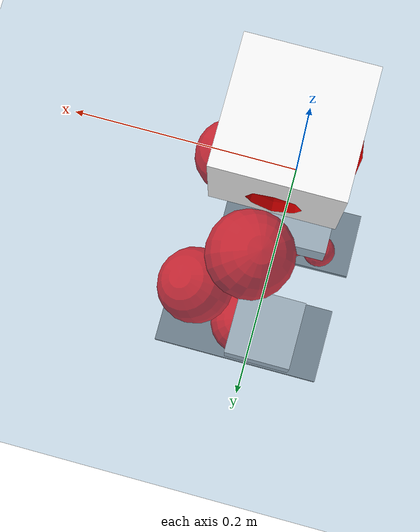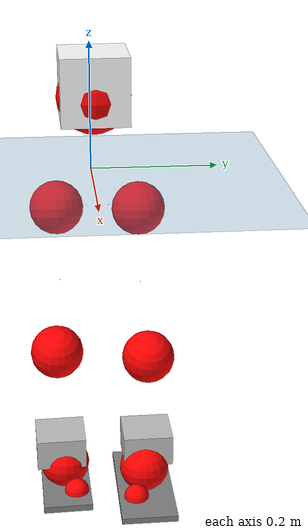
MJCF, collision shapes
<mujoco model="pi_12dof_release_v1">
  <compiler angle="radian" assetdir="assets" balanceinertia="true" inertiafromgeom="false"/>

  <option timestep="0.005" density="1.2" viscosity="2e-05"/>

  <size nkey="1"/>

  <visual>
    <quality shadowsize="8192"/>
    <map shadowclip="0.5"/>
  </visual>

  <default>
    <default class="/">
      <joint armature="0.01" damping="0.01" frictionloss="0.01"/>
      <geom contype="0" conaffinity="0" group="1" solref="-1000 -80"/>
      <site size="0.01 0.005 0.005" group="5"/>
      <general forcelimited="true" biastype="affine" gainprm="20" biasprm="0 -20 -0.5"/>
      <default class="foot">
        <geom size="0.0845 0.036 0.005" type="box" condim="6" group="4" priority="1" friction="0.9 0.2 0.2" solimp="0.015 1 0.005"/>
      </default>
      <default class="reward_collision_sphere">
        <geom group="5" rgba="1 0 0 1"/>
      </default>
    </default>
  </default>

  <asset>
    <texture type="skybox" colorspace="auto" name="//unnamed_texture_0" builtin="gradient" rgb1="0.95 0.95 0.95" rgb2="0.95 0.95 0.95" width="100" height="600"/>
    <texture type="2d" colorspace="auto" name="texplane" builtin="checker" rgb1="0.345 0.575 0.748" rgb2="0.345 0.575 0.748" markrgb="1 1 1" width="512" height="512"/>
    <material name="MatPlane" class="/" texture="texplane" texuniform="true" texrepeat="2 2" specular="0.9"/>
    <mesh name="baselink_1" class="/" file="baselink_1.STL"/>
    <mesh name="r_hip_pitch_link" class="/" file="r_hip_pitch_link.STL"/>
    <mesh name="r_hip_roll_link" class="/" file="r_hip_roll_link.STL"/>
    <mesh name="r_thigh_link" class="/" file="r_thigh_link.STL"/>
    <mesh name="r_calf_link" class="/" file="r_calf_link.STL"/>
    <mesh name="r_ankle_pitch_link" class="/" file="r_ankle_pitch_link.STL"/>
    <mesh name="r_ankle_roll_link" class="/" file="r_ankle_roll_link.STL"/>
    <mesh name="l_hip_pitch_link" class="/" file="l_hip_pitch_link.STL"/>
    <mesh name="l_hip_roll_link" class="/" file="l_hip_roll_link.STL"/>
    <mesh name="l_thigh_link" class="/" file="l_thigh_link.STL"/>
    <mesh name="l_calf_link" class="/" file="l_calf_link.STL"/>
    <mesh name="l_ankle_pitch_link" class="/" file="l_ankle_pitch_link.STL"/>
    <mesh name="l_ankle_roll_link" class="/" file="l_ankle_roll_link.STL"/>
  </asset>

  <worldbody>
    <geom name="floor" class="/" size="100 100 0.125" type="plane" group="0" material="MatPlane"/>
    <light name="toplight_shadow" class="/" pos="0 0 5" dir="0.0990148 0.0990148 -0.990148" type="directional" ambient="0.04 0.04 0.04" diffuse="0.55 0.55 0.55" specular="0.12 0.12 0.12"/>
    <light name="toplight_fill" class="/" pos="0 0 5" dir="0.0990148 0.0990148 -0.990148" type="directional" castshadow="false" ambient="0.04 0.04 0.04" diffuse="0.3 0.3 0.3" specular="0.08 0.08 0.08"/>
    <body name="trunk" pos="0.01003 0.00590004 0.0021389" quat="0.999993 0.00279562 -0.00180419 0.00165302">
      <inertial pos="0.0122965 -0.00228026 0.065196" quat="0.696374 0.00150828 0.0153096 0.717514" mass="2.43384" diaginertia="0.00109038 0.00423041 0.0447888"/>
      <joint name="//unnamed_joint_0" type="free"/>
      <geom name="//unnamed_geom_1" class="/" type="mesh" density="0" rgba="1 1 1 1" mesh="baselink_1"/>
      <geom name="//unnamed_geom_2" class="/" size="0.0526371 0.0526371 0.0526371" pos="0 0 0.13216" type="box" rgba="1 1 1 1"/>
      <geom name="//unnamed_geom_3" class="reward_collision_sphere" size="0.0579008" pos="0 0 0.11564"/>
      <site name="imu" class="/" pos="0.00873549 -0.00900069 0.00341938" size="0.0105274"/>
      <camera name="track" class="/" pos="0 -1.71991 0" quat="0.707107 0.707107 0 0" mode="trackcom"/>
      <camera name="ego_camera" class="/" pos="0.0484702 0 0.29736" quat="-0.5 -0.5 0.5 0.5"/>
      <body name="r_hip_pitch_link" pos="0.00462425 -0.014923 -0.0566848" quat="0.991967 0.0035691 -0.126406 0.00307997">
        <inertial pos="0.0115494 -0.0439087 0.00346394" quat="-0.027154 0.704371 -0.0305561 0.708654" mass="0.381226" diaginertia="1.08522e-05 4.61287e-05 0.000869127"/>
        <joint name="r_hip_pitch_joint" class="/" pos="0 0 0" axis="-0.0164997 -0.999566 0.0244197" stiffness="0.0494452" range="-1.75094 1.22517" armature="0.0103755" damping="0.0381707" frictionloss="0.00732923"/>
        <geom name="//unnamed_geom_4" class="/" type="mesh" density="0" rgba="0.75294 0.75294 0.75294 1" mesh="r_hip_pitch_link"/>
        <geom name="//unnamed_geom_5" class="/" size="0.000526371 0.000526371 0.000526371" type="box" rgba="0.75294 0.75294 0.75294 1"/>
        <body name="r_hip_roll_link" pos="0.00099501 -0.0474779 -0.00181817" quat="1 2.36225e-05 1.01389e-05 -1.49007e-05">
          <inertial pos="-0.0111263 0.00172129 -0.109298" quat="0.704147 -0.0761021 -0.0899132 0.700215" mass="0.462119" diaginertia="3.75058e-05 0.000131655 0.00164397"/>
          <joint name="r_hip_roll_joint" class="/" pos="0 0 0" axis="-0.999993 -0.00284252 -0.00241021" range="0.0329176 0.4232" armature="0.0156492" damping="0.0360347" frictionloss="0.0114571"/>
          <geom name="//unnamed_geom_6" class="/" type="mesh" density="0" rgba="0.75294 0.75294 0.75294 1" mesh="r_hip_roll_link"/>
          <geom name="//unnamed_geom_7" class="/" size="0.000526371 0.000526371 0.000526371" type="box" rgba="0.75294 0.75294 0.75294 1"/>
          <geom name="//unnamed_geom_8" class="reward_collision_sphere" size="0.0421097"/>
          <body name="r_thigh_link" pos="-0.00132868 0.000329073 -0.114926" quat="0.999996 0.00264986 4.69519e-05 -0.000307493">
            <inertial pos="-0.00450357 -0.00271229 -0.072014" quat="0.743708 0.667222 -0.00334731 -0.0412488" mass="0.129561" diaginertia="1.42546e-05 4.23426e-05 0.000757361"/>
            <joint name="r_thigh_joint" class="/" pos="0 0 0" axis="-0.0114526 0.0338005 -0.999363" stiffness="0.0496941" range="-0.296475 0.489128" armature="0.0151247" damping="0" frictionloss="0.00962302"/>
            <geom name="//unnamed_geom_9" class="/" type="mesh" density="0" rgba="0.75294 0.75294 0.75294 1" mesh="r_thigh_link"/>
            <geom name="//unnamed_geom_10" class="/" size="0.000526371 0.000526371 0.000526371" type="box" rgba="0.75294 0.75294 0.75294 1"/>
            <body name="r_calf_link" pos="-0.00108255 -0.0103555 -0.116799" quat="0.947727 -0.000761475 0.319077 0.00128653">
              <inertial pos="-0.00731896 -0.00153984 -0.114949" quat="0.999934 -0.000520154 -0.00708959 0.0090518" mass="0.747495" diaginertia="0.000364315 0.00152531 0.00211674"/>
              <joint name="r_calf_joint" class="/" pos="0 0 0" axis="0.00110626 -0.999999 -7.12737e-05" range="-1.67993 0.814759" armature="0.00411658" damping="0.0447888" frictionloss="0.00474946"/>
              <geom name="//unnamed_geom_11" class="/" type="mesh" density="0" rgba="0.75294 0.75294 0.75294 1" mesh="r_calf_link"/>
              <geom name="//unnamed_geom_12" class="/" size="0.000526371 0.000526371 0.000526371" type="box" rgba="0.75294 0.75294 0.75294 1"/>
              <geom name="//unnamed_geom_13" class="reward_collision_sphere" size="0.0421097"/>
              <body name="r_ankle_pitch_link" pos="0.00240422 0.00105452 -0.239894" quat="0.980909 -0.00213556 -0.194455 0.000419011">
                <inertial pos="0.00920341 0.0137332 0.000808645" quat="-0.000357014 0.704473 -0.000185591 0.709731" mass="0.238887" diaginertia="3.60354e-05 0.000110231 0.00164505"/>
                <joint name="r_ankle_pitch_joint" class="/" pos="0 0 0" axis="0.0418568 -0.998562 0.0335013" stiffness="0.0481389" range="-1.14984 0.363913" armature="0.00999706" damping="0.0110454" frictionloss="0.0135008"/>
                <geom name="//unnamed_geom_14" class="/" type="mesh" density="0" rgba="0.75294 0.75294 0.75294 1" mesh="r_ankle_pitch_link"/>
                <geom name="//unnamed_geom_15" class="/" size="0.0410569 0.0421097 0.0263186" type="box" rgba="0.75294 0.75294 0.75294 1"/>
                <body name="r_ankle_roll_link" pos="0.0431928 0.00606715 0.00138881" quat="1 8.66487e-05 1.26602e-05 0.000180366">
                  <inertial pos="-0.0191034 -0.000473918 -0.0231211" quat="0.562534 0.430846 0.435511 0.555209" mass="0.543302" diaginertia="0.000103757 0.00047277 0.00322247"/>
                  <joint name="r_ankle_roll_joint" class="/" pos="0 0 0" axis="-0.998182 -0.0178443 0.0575668" stiffness="0.00268358" range="-0.182713 0.307556" armature="0.0110503" damping="0.0271172" frictionloss="0.0113727"/>
                  <geom name="//unnamed_geom_16" class="/" type="mesh" density="0" rgba="0.75294 0.75294 0.75294 1" mesh="r_ankle_roll_link"/>
                  <geom name="//unnamed_geom_17" class="/" type="mesh" rgba="0.75294 0.75294 0.75294 1" mesh="r_ankle_roll_link"/>
                  <geom name="right_foot" class="foot" size="0.0879354 0.0413724 0.00582594" pos="-0.0329597 0 -0.072688"/>
                  <geom name="//unnamed_geom_19" class="reward_collision_sphere" size="0.0421097" pos="-0.0323134 0 -0.03304"/>
                  <geom name="//unnamed_geom_20" class="reward_collision_sphere" size="0.0210548" pos="0.00969403 0.0171991 -0.06608"/>
                  <geom name="//unnamed_geom_21" class="reward_collision_sphere" size="0.0210548" pos="-0.0775523 0.0171991 -0.06608"/>
                  <site name="right_foot" class="foot" pos="-0.0329597 0 -0.072688" size="0.0105274"/>
                </body>
              </body>
            </body>
          </body>
        </body>
      </body>
      <body name="l_hip_pitch_link" pos="-0.00014131 0.0205753 -0.059" quat="0.992431 -1.50289e-06 -0.12268 -0.00554002">
        <inertial pos="-0.00948559 0.0464303 0.000441083" quat="-0.0389464 0.704667 0.029854 0.707839" mass="0.464169" diaginertia="1.47215e-05 4.65027e-05 0.00127414"/>
        <joint name="l_hip_pitch_joint" class="/" pos="0 0 0" axis="-0.000898754 0.999993 -0.00368006" stiffness="0.00715117" range="-1.33438 1.7926" armature="0.00698806" damping="0.0358816" frictionloss="0.00920666"/>
        <geom name="//unnamed_geom_22" class="/" type="mesh" density="0" rgba="0.75294 0.75294 0.75294 1" mesh="l_hip_pitch_link"/>
        <geom name="//unnamed_geom_23" class="/" size="0.000526371 0.000526371 0.000526371" type="box" rgba="0.75294 0.75294 0.75294 1"/>
        <body name="l_hip_roll_link" pos="0.00944428 0.0460624 -0.0064787" quat="0.999988 -0.000598008 0.00194315 0.00434489">
          <inertial pos="0.000604321 0.000276504 -0.101092" quat="0.703322 -0.0729374 -0.118803 0.697068" mass="0.498347" diaginertia="3.7222e-05 0.000142211 0.00155493"/>
          <joint name="l_hip_roll_joint" class="/" pos="0 0 0" axis="-0.999876 -0.0013727 -0.015664" range="-0.480131 0.157087" armature="0.00699948" damping="0.0599956" frictionloss="0.00873185"/>
          <geom name="//unnamed_geom_24" class="/" type="mesh" density="0" rgba="0.75294 0.75294 0.75294 1" mesh="l_hip_roll_link"/>
          <geom name="//unnamed_geom_25" class="/" size="0.000526371 0.000526371 0.000526371" type="box" rgba="0.75294 0.75294 0.75294 1"/>
          <geom name="//unnamed_geom_26" class="reward_collision_sphere" size="0.0421097"/>
          <body name="l_thigh_link" pos="-0.00130458 0.000474211 -0.117985" quat="0.999999 0.00099527 0.000444171 0.000716139">
            <inertial pos="0.000652894 -0.000814074 -0.0828973" quat="0.67539 0.73746 -0.000192312 0.000901041" mass="0.130785" diaginertia="1.41379e-05 4.62032e-05 0.000707969"/>
            <joint name="l_thigh_joint" class="/" pos="0 0 0" axis="-0.000378003 -0.000175583 -1" range="-0.602613 0.26827" armature="0.0128389" damping="0.000718523" frictionloss="0.0100002"/>
            <geom name="//unnamed_geom_27" class="/" type="mesh" density="0" rgba="0.75294 0.75294 0.75294 1" mesh="l_thigh_link"/>
            <geom name="//unnamed_geom_28" class="/" size="0.000526371 0.000526371 0.000526371" type="box" rgba="0.75294 0.75294 0.75294 1"/>
            <body name="l_calf_link" pos="-0.00210981 0.00973306 -0.123409" quat="0.948552 -0.000800243 0.316618 0.000742475">
              <inertial pos="0.000135821 -0.00391318 -0.114979" quat="0.999221 -0.0166961 0.00211396 -0.0356877" mass="0.923166" diaginertia="0.000367341 0.00151029 0.00216195"/>
              <joint name="l_calf_joint" class="/" pos="0 0 0" axis="-0.0137805 0.999813 -0.0135335" range="-0.659531 1.67323" armature="0.0159905" damping="0" frictionloss="0.00514249"/>
              <geom name="//unnamed_geom_29" class="/" type="mesh" density="0" rgba="0.75294 0.75294 0.75294 1" mesh="l_calf_link"/>
              <geom name="//unnamed_geom_30" class="/" size="0.000526371 0.000526371 0.000526371" type="box" rgba="0.75294 0.75294 0.75294 1"/>
              <geom name="//unnamed_geom_31" class="reward_collision_sphere" size="0.0421097"/>
              <body name="l_ankle_pitch_link" pos="0.00148172 0.00582497 -0.223779" quat="0.980027 0.000536965 -0.198862 -0.00130972">
                <inertial pos="0.00406608 0.00267346 0.00155153" quat="-0.00357575 0.704257 0.00469281 0.709921" mass="0.218671" diaginertia="3.65986e-05 0.000105279 0.00167912"/>
                <joint name="l_ankle_pitch_joint" class="/" pos="0 0 0" axis="0.000473775 0.999994 0.00342674" range="-0.525976 1.29369" armature="0.0107659" damping="0" frictionloss="0.00917503"/>
                <geom name="//unnamed_geom_32" class="/" type="mesh" density="0" rgba="0.75294 0.75294 0.75294 1" mesh="l_ankle_pitch_link"/>
                <geom name="//unnamed_geom_33" class="/" size="0.0410569 0.0421097 0.0263186" type="box" rgba="0.75294 0.75294 0.75294 1"/>
                <body name="l_ankle_roll_link" pos="0.0607174 -0.00653106 -0.00205111" quat="1 0.000253703 0.000117486 4.21799e-05">
                  <inertial pos="-0.0267832 -0.00347481 -0.0279512" quat="0.558953 0.433468 0.441595 0.55197" mass="0.590422" diaginertia="0.000136869 0.000590815 0.003669"/>
                  <joint name="l_ankle_roll_joint" class="/" pos="0 0 0" axis="-0.999349 -0.00959929 0.0347771" stiffness="0.0221179" range="-0.143175 0.149389" armature="0.0114124" damping="0" frictionloss="0.01031"/>
                  <geom name="//unnamed_geom_34" class="/" type="mesh" density="0" rgba="0.75294 0.75294 0.75294 1" mesh="l_ankle_roll_link"/>
                  <geom name="//unnamed_geom_35" class="/" type="mesh" rgba="0.75294 0.75294 0.75294 1" mesh="l_ankle_roll_link"/>
                  <geom name="left_foot" class="foot" size="0.106832 0.0472882 0.00534939" pos="-0.0329597 0 -0.072688"/>
                  <geom name="//unnamed_geom_37" class="reward_collision_sphere" size="0.0421097" pos="-0.0323134 0 -0.03304"/>
                  <geom name="//unnamed_geom_38" class="reward_collision_sphere" size="0.0210548" pos="0.00969403 -0.0171991 -0.06608"/>
                  <geom name="//unnamed_geom_39" class="reward_collision_sphere" size="0.0210548" pos="-0.0775523 -0.0171991 -0.06608"/>
                  <site name="left_foot" class="foot" pos="-0.0329597 0 -0.072688" size="0.0105274"/>
                </body>
              </body>
            </body>
          </body>
        </body>
      </body>
    </body>
  </worldbody>

  <contact>
    <pair class="/" geom1="floor" geom2="right_foot" name="//unnamed_contact_1"/>
    <pair class="/" geom1="floor" geom2="left_foot" name="//unnamed_contact_0"/>
  </contact>

  <actuator>
    <general name="r_hip_pitch_joint" class="/" joint="r_hip_pitch_joint" forcerange="-22.135 22.135" gainprm="21.5233" biasprm="0 -21.5233 -0.585205"/>
    <general name="r_hip_roll_joint" class="/" joint="r_hip_roll_joint" forcerange="-22.1378 22.1378" gainprm="21.5233" biasprm="0 -21.5233 -0.585205"/>
    <general name="r_thigh_joint" class="/" joint="r_thigh_joint" forcerange="-21.6076 21.6076" gainprm="21.5233" biasprm="0 -21.5233 -0.585205"/>
    <general name="r_calf_joint" class="/" joint="r_calf_joint" forcerange="-21.6293 21.6293" gainprm="21.5233" biasprm="0 -21.5233 -0.585205"/>
    <general name="r_ankle_pitch_joint" class="/" joint="r_ankle_pitch_joint" forcerange="-22.3202 22.3202" gainprm="21.5233" biasprm="0 -21.5233 -0.585205"/>
    <general name="r_ankle_roll_joint" class="/" joint="r_ankle_roll_joint" forcerange="-21.695 21.695" gainprm="21.5233" biasprm="0 -21.5233 -0.585205"/>
    <general name="l_hip_pitch_joint" class="/" joint="l_hip_pitch_joint" forcerange="-20.8859 20.8859" gainprm="21.5233" biasprm="0 -21.5233 -0.585205"/>
    <general name="l_hip_roll_joint" class="/" joint="l_hip_roll_joint" forcerange="-25.2015 25.2015" gainprm="21.5233" biasprm="0 -21.5233 -0.585205"/>
    <general name="l_thigh_joint" class="/" joint="l_thigh_joint" forcerange="-21.7597 21.7597" gainprm="21.5233" biasprm="0 -21.5233 -0.585205"/>
    <general name="l_calf_joint" class="/" joint="l_calf_joint" forcerange="-12.9449 12.9449" gainprm="21.5233" biasprm="0 -21.5233 -0.585205"/>
    <general name="l_ankle_pitch_joint" class="/" joint="l_ankle_pitch_joint" forcerange="-22.2704 22.2704" gainprm="21.5233" biasprm="0 -21.5233 -0.585205"/>
    <general name="l_ankle_roll_joint" class="/" joint="l_ankle_roll_joint" forcerange="-27.5028 27.5028" gainprm="21.5233" biasprm="0 -21.5233 -0.585205"/>
  </actuator>

  <sensor>
    <gyro site="imu" name="imu_angular_velocity"/>
    <velocimeter site="imu" name="imu_linear_velocity"/>
    <framelinvel objtype="site" objname="left_foot" name="left_foot_global_linear_velocity"/>
    <framelinvel objtype="site" objname="right_foot" name="right_foot_global_linear_velocity"/>
  </sensor>

  <keyframe>
    <key name="home" qpos="0 0 0.291 1 0 0 0 0.4 0 0 -0.8 0.4 0 -0.4 0 0 0.8 -0.4 0"/>
  </keyframe>
</mujoco>
